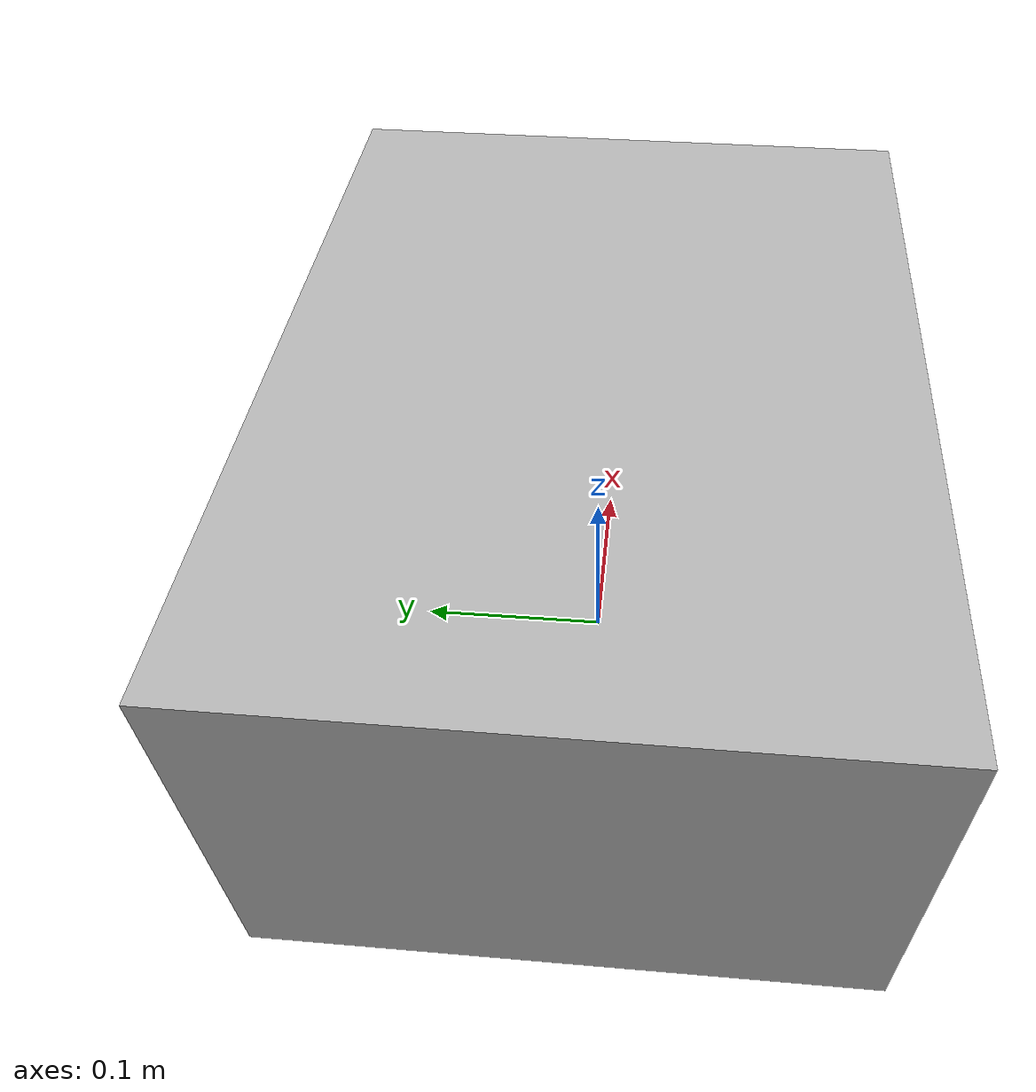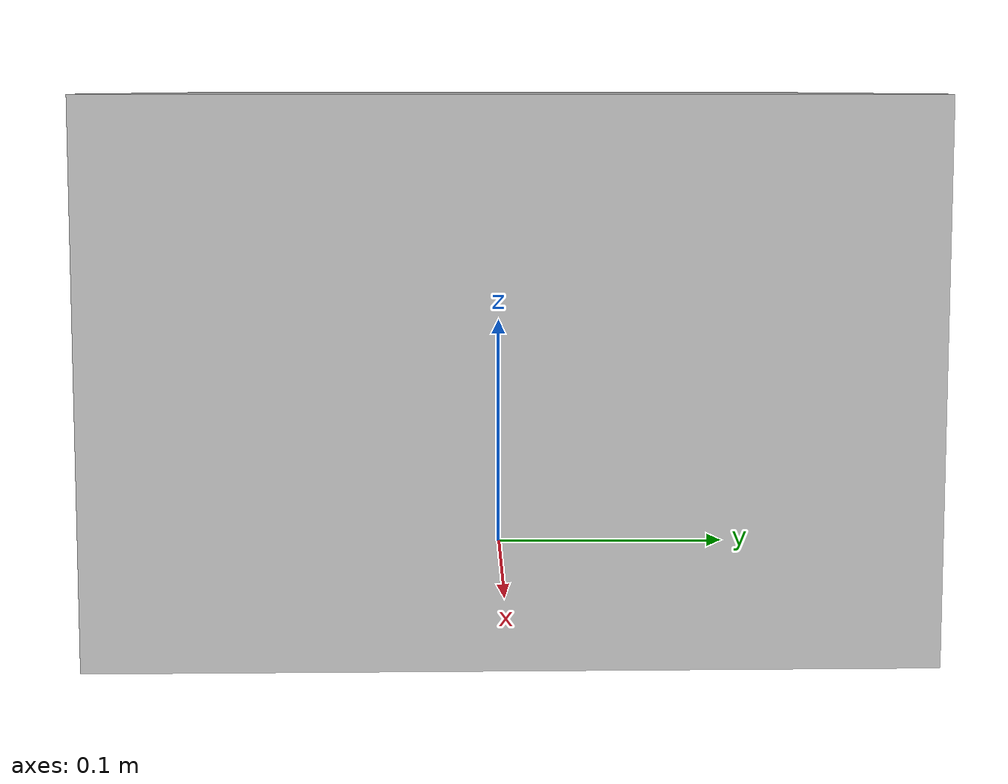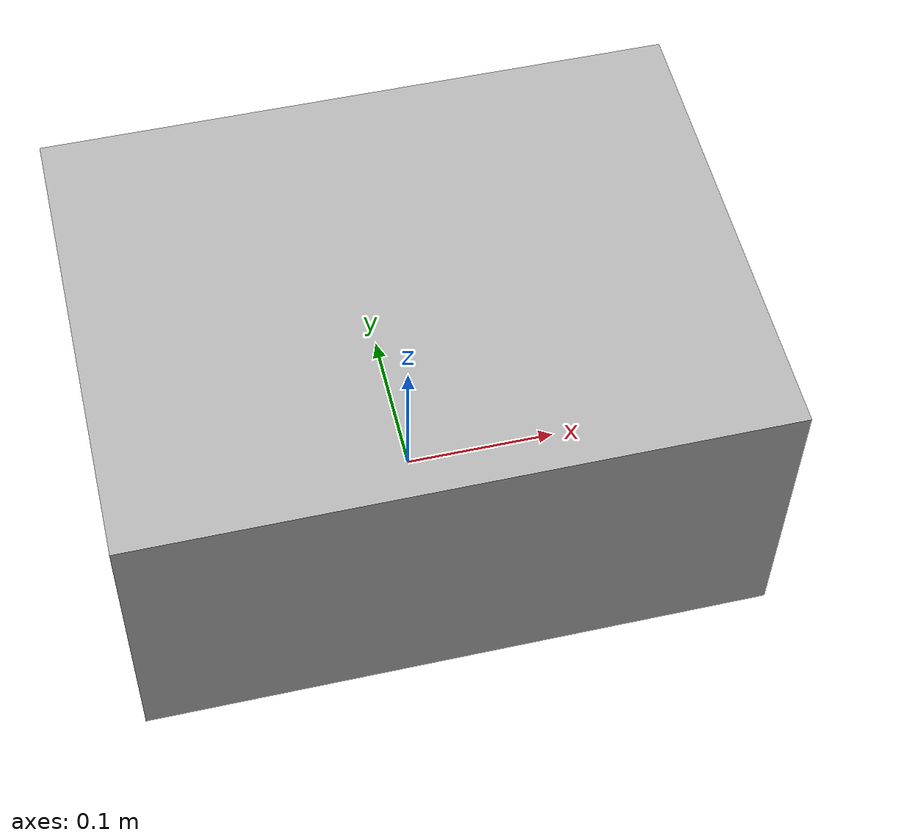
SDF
<?xml version="1.0" ?>
<sdf version="1.6">
  <model name="cardboard_box_yellow_11">
    <pose>0 0 0.1 0 0 0</pose>
    <link name="link">
      <inertial>
        <mass>0.8</mass>
        <inertia>
          <ixx>0.008666667</ixx>
          <ixy>0</ixy>
          <ixz>0</ixz>
          <iyy>0.013333333</iyy>
          <iyz>0</iyz>
          <izz>0.016666667</izz>
        </inertia>
      </inertial>
      <collision name="collision">
        <geometry>
          <box>
            <size>0.4 0.3 0.2</size>
          </box>
        </geometry>
        <surface>
          <friction>
            <ode>
              <mu>1.0</mu>
              <mu2>1.0</mu2>
            </ode>
          </friction>
          <contact>
            <ode>
              <kp>10000000.0</kp>
              <kd>1.0</kd>
              <min_depth>0.001</min_depth>
              <max_vel>0.1</max_vel>
            </ode>
          </contact>
        </surface>
      </collision>
      <visual name="visual">
        <pose>0 0 -0.1 0 0 0</pose>
        <geometry>
          <mesh>
            <uri>model://cardboard_box_yellow_11/meshes/cardboard_box_yellow_11.dae</uri>
            <scale>1.007455168 0.755591376 0.503727584</scale>
          </mesh>
        </geometry>
      </visual>
    </link>
  </model>
</sdf>
